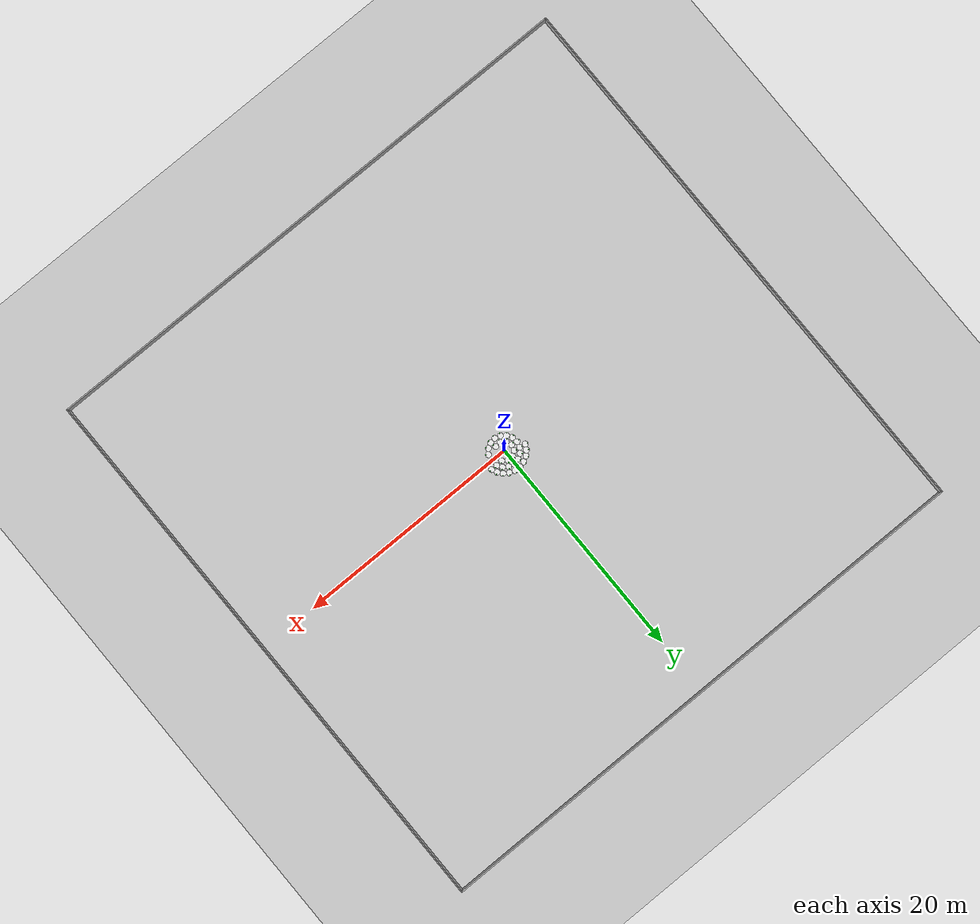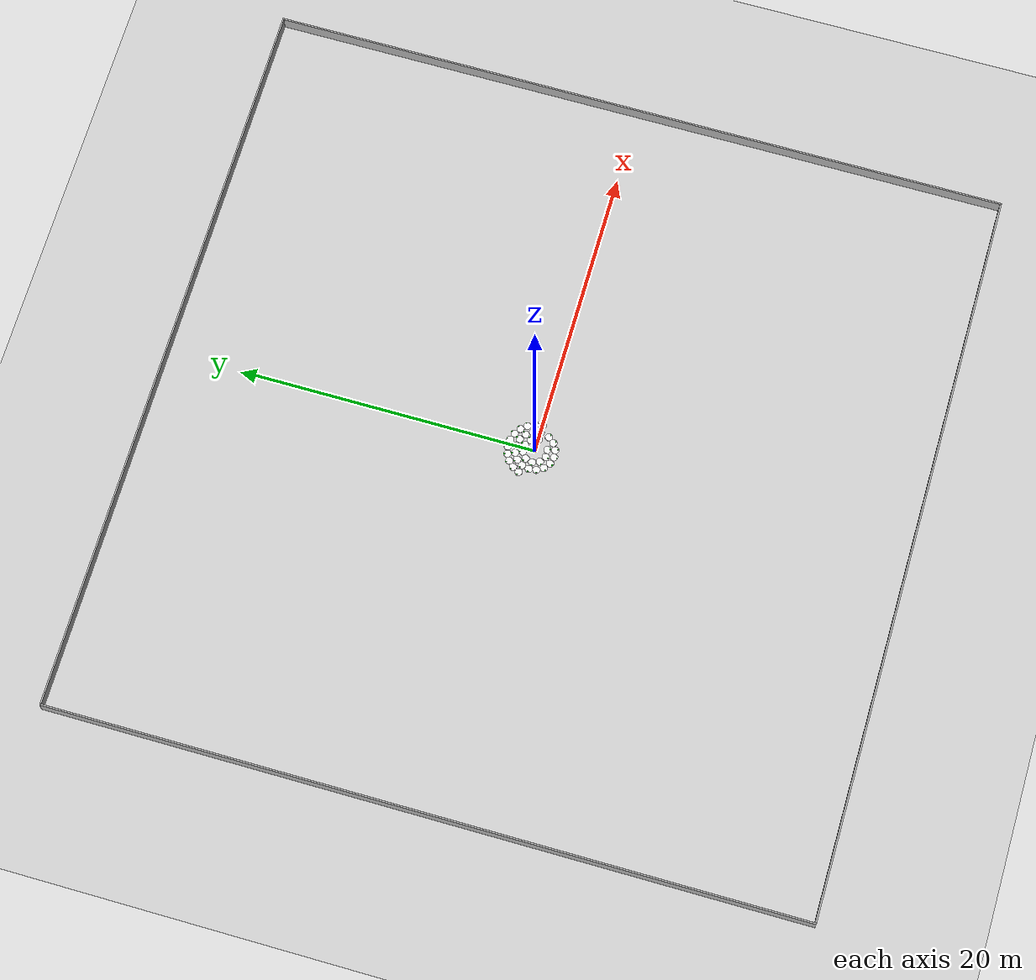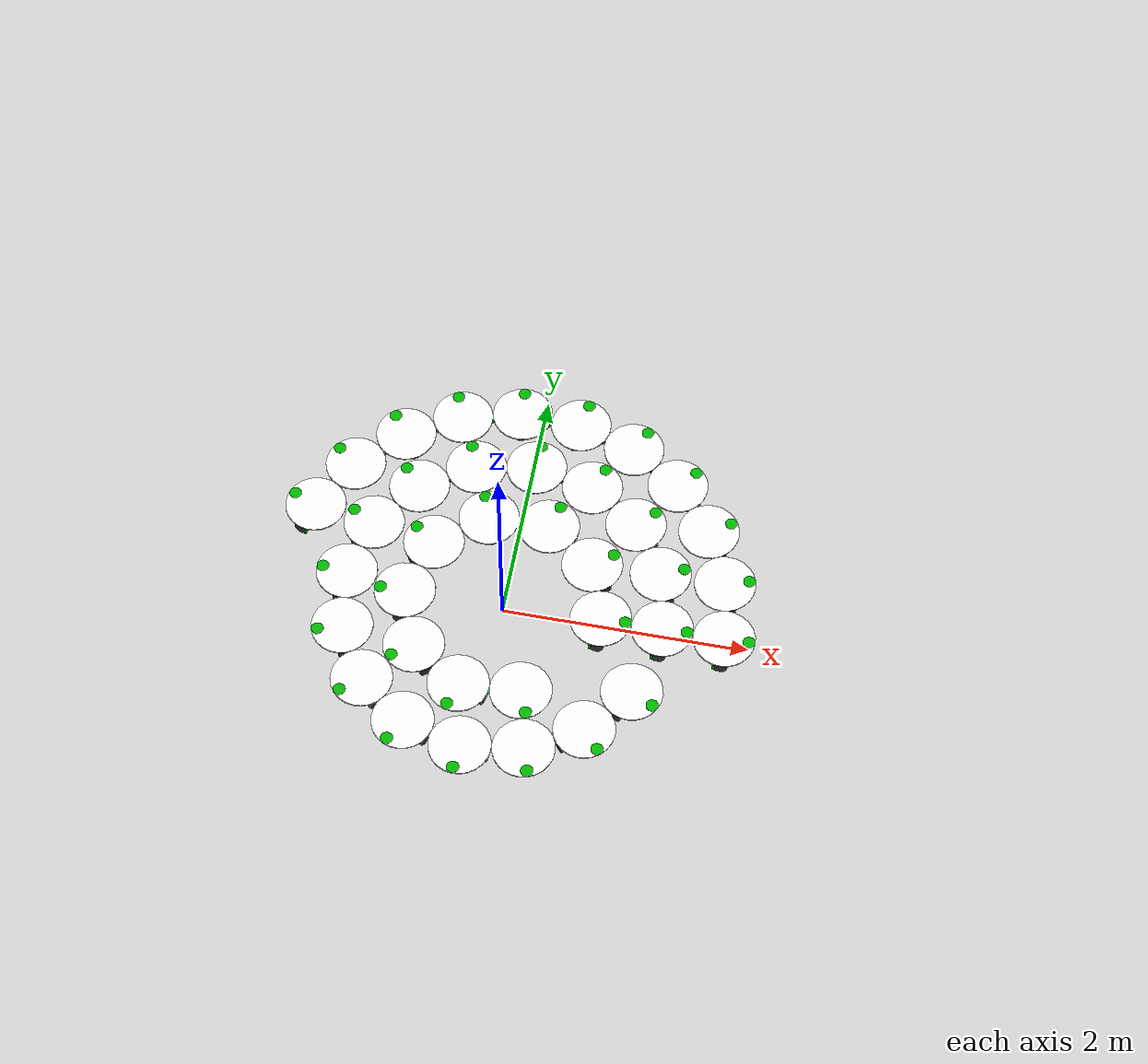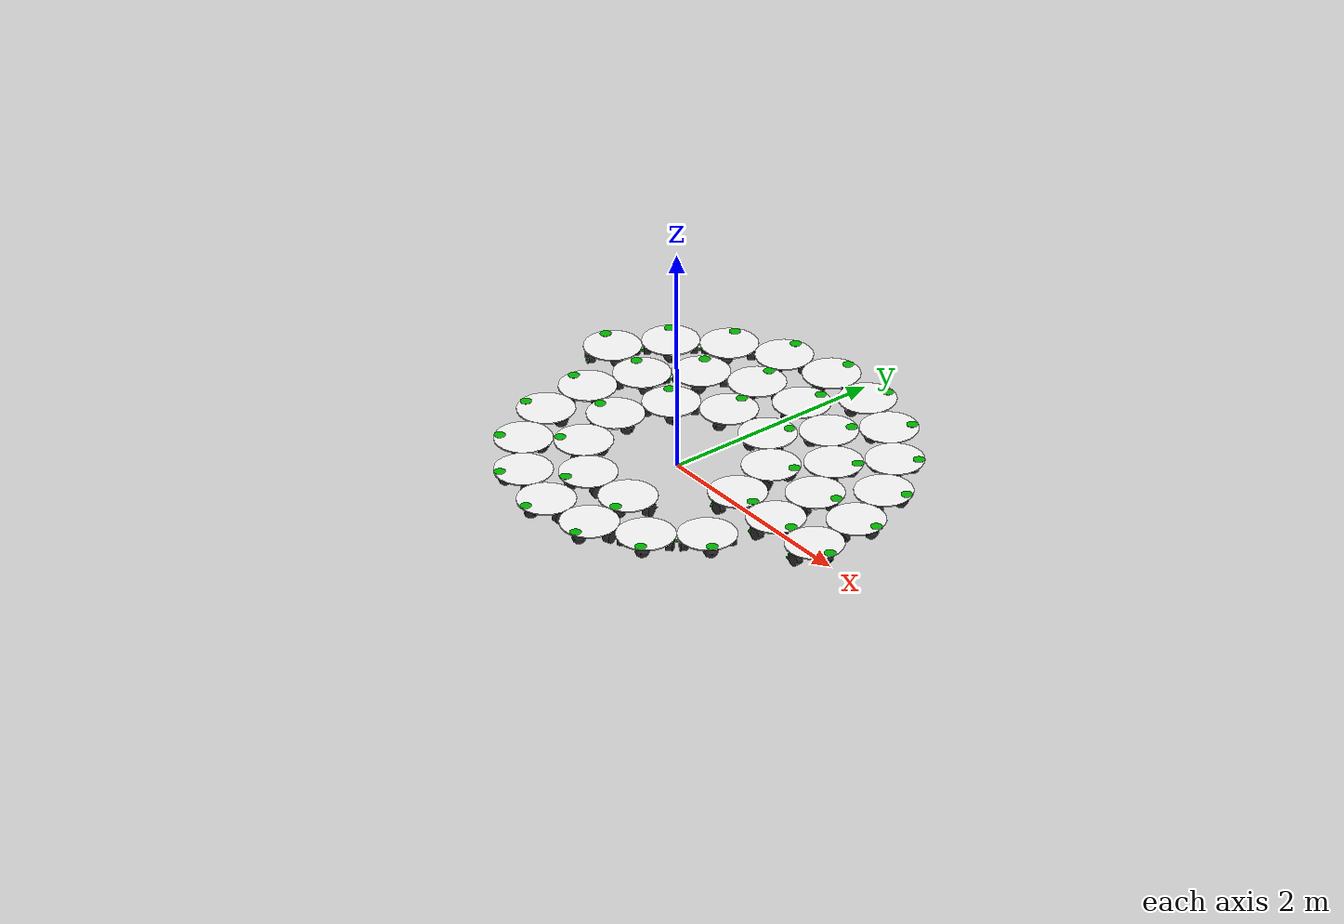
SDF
<sdf version="1.6">
 <world name="default">
  <include><uri>model://ground_plane</uri></include>
  <include><uri>model://sun</uri></include>
  <include><name>m_4wrobot1</name><pose>0.8 0.0 0.005 0 0 0</pose><uri>model://m_4wrobot</uri></include>
  <include>
   <name>m_4wrobot2</name>
   <pose>0.64375 0.4749588797990832 0.005 0 0 0.6356474078557615</pose>
   <uri>model://m_4wrobot</uri>
  </include>
  <include>
   <name>m_4wrobot3</name>
   <pose>0.2360351562500001 0.7643869471766496 0.005 0 0 1.271294815711523</pose>
   <uri>model://m_4wrobot</uri>
  </include>
  <include>
   <name>m_4wrobot4</name>
   <pose>-0.26388092041015615 0.7552263633133373 0.005 0 0 1.9069422235672844</pose>
   <uri>model://m_4wrobot</uri>
  </include>
  <include>
   <name>m_4wrobot5</name>
   <pose>-0.6607185125350952 0.4510554812807526 0.005 0 0 2.542589631423046</pose>
   <uri>model://m_4wrobot</uri>
  </include>
  <include>
   <name>m_4wrobot6</name>
   <pose>-0.7994629357010127 -0.029308948127125846 0.005 0 0 3.178237039278807</pose>
   <uri>model://m_4wrobot</uri>
  </include>
  <include>
   <name>m_4wrobot7</name>
   <pose>-0.6259171496087224 -0.4982245696728458 0.005 0 0 3.8138844471345683</pose>
   <uri>model://m_4wrobot</uri>
  </include>
  <include>
   <name>m_4wrobot8</name>
   <pose>-0.20787247695052505 -0.7725212186901105 0.005 0 0 4.4495318549903295</pose>
   <uri>model://m_4wrobot</uri>
  </include>
  <include>
   <name>m_4wrobot9</name>
   <pose>0.29137238201647103 -0.745051766656551 0.005 0 0 5.085179262846091</pose>
   <uri>model://m_4wrobot</uri>
  </include>
  <include><name>m_4wrobot10</name><pose>1.3 0.0 0.005 0 0 0</pose><uri>model://m_4wrobot</uri></include>
  <include>
   <name>m_4wrobot11</name>
   <pose>1.203846153846154 0.49066733931434897 0.005 0 0 0.38702638502157094</pose>
   <uri>model://m_4wrobot</uri>
  </include>
  <include>
   <name>m_4wrobot12</name>
   <pose>0.9296085571233501 0.9087507526946227 0.005 0 0 0.7740527700431419</pose>
   <uri>model://m_4wrobot</uri>
  </include>
  <include>
   <name>m_4wrobot13</name>
   <pose>0.5178549016544888 1.1924035813567568 0.005 0 0 1.1610791550647128</pose>
   <uri>model://m_4wrobot</uri>
  </include>
  <include>
   <name>m_4wrobot14</name>
   <pose>0.029495491503010597 1.29966534768801 0.005 0 0 1.5481055400862838</pose>
   <uri>model://m_4wrobot</uri>
  </include>
  <include>
   <name>m_4wrobot15</name>
   <pose>-0.4632271570364868 1.214668926491451 0.005 0 0 1.9351319251078547</pose>
   <uri>model://m_4wrobot</uri>
  </include>
  <include>
   <name>m_4wrobot16</name>
   <pose>-0.8874250782037229 0.9499877528553284 0.005 0 0 2.3221583101294256</pose>
   <uri>model://m_4wrobot</uri>
  </include>
  <include>
   <name>m_4wrobot17</name>
   <pose>-1.1803471002283965 0.5447758465482989 0.005 0 0 2.709184695150997</pose>
   <uri>model://m_4wrobot</uri>
  </include>
  <include>
   <name>m_4wrobot18</name>
   <pose>-1.2986615630476859 0.058975797260752326 0.005 0 0 3.0962110801725675</pose>
   <uri>model://m_4wrobot</uri>
  </include>
  <include>
   <name>m_4wrobot19</name>
   <pose>-1.2248663271912825 -0.43554848239081084 0.005 0 0 3.4832374651941382</pose>
   <uri>model://m_4wrobot</uri>
  </include>
  <include>
   <name>m_4wrobot20</name>
   <pose>-0.9698778476675296 -0.8656425131679938 0.005 0 0 3.870263850215709</pose>
   <uri>model://m_4wrobot</uri>
  </include>
  <include>
   <name>m_4wrobot21</name>
   <pose>-0.5714163137550893 -1.1676829177368937 0.005 0 0 4.25729023523728</pose>
   <uri>model://m_4wrobot</uri>
  </include>
  <include>
   <name>m_4wrobot22</name>
   <pose>-0.08842573934633403 -1.2969891628772594 0.005 0 0 4.64431662025885</pose>
   <uri>model://m_4wrobot</uri>
  </include>
  <include>
   <name>m_4wrobot23</name>
   <pose>0.40764556573495575 -1.2344331058168474 0.005 0 0 5.031343005280421</pose>
   <uri>model://m_4wrobot</uri>
  </include>
  <include>
   <name>m_4wrobot24</name>
   <pose>0.8434142723347433 -0.9892686011503931 0.005 0 0 5.418369390301992</pose>
   <uri>model://m_4wrobot</uri>
  </include>
  <include>
   <name>m_4wrobot25</name>
   <pose>1.154417554032942 -0.5977625874380227 0.005 0 0 5.8053957753235625</pose>
   <uri>model://m_4wrobot</uri>
  </include>
  <include><name>m_4wrobot26</name><pose>1.8 0.0 0.005 0 0 0</pose><uri>model://m_4wrobot</uri></include>
  <include>
   <name>m_4wrobot27</name>
   <pose>1.7305555555555554 0.4951539852771081 0.005 0 0 0.2786786815155391</pose>
   <uri>model://m_4wrobot</uri>
  </include>
  <include>
   <name>m_4wrobot28</name>
   <pose>1.5275805898491084 0.9521016445297478 0.005 0 0 0.5573573630310782</pose>
   <uri>model://m_4wrobot</uri>
  </include>
  <include>
   <name>m_4wrobot29</name>
   <pose>1.206736751469119 1.3355846707168206 0.005 0 0 0.8360360445466173</pose>
   <uri>model://m_4wrobot</uri>
  </include>
  <include>
   <name>m_4wrobot30</name>
   <pose>0.7927805094263886 1.616013324163398 0.005 0 0 1.1147147260621564</pose>
   <uri>model://m_4wrobot</uri>
  </include>
  <include>
   <name>m_4wrobot31</name>
   <pose>0.31765293177977033 1.7717495914862564 0.005 0 0 1.3933934075776955</pose>
   <uri>model://m_4wrobot</uri>
  </include>
  <include>
   <name>m_4wrobot32</name>
   <pose>-0.18198490294862033 1.7907767853919654 0.005 0 0 1.6720720890932346</pose>
   <uri>model://m_4wrobot</uri>
  </include>
  <include>
   <name>m_4wrobot33</name>
   <pose>-0.6675806926964075 1.6716267582026152 0.005 0 0 1.9507507706087737</pose>
   <uri>model://m_4wrobot</uri>
  </include>
  <include>
   <name>m_4wrobot34</name>
   <pose>-1.101665626526262 1.4234931848556558 0.005 0 0 2.2294294521243128</pose>
   <uri>model://m_4wrobot</uri>
  </include>
  <include>
   <name>m_4wrobot35</name>
   <pose>-1.4507454965809423 1.0655221744056365 0.005 0 0 2.508108133639852</pose>
   <uri>model://m_4wrobot</uri>
  </include>
  <include>
   <name>m_4wrobot36</name>
   <pose>-1.6878851277019076 0.6253349467946878 0.005 0 0 2.7867868151553914</pose>
   <uri>model://m_4wrobot</uri>
  </include>
  <model name="boundary1">
   <static>1</static>
   <link name="link">
    <collision name="collision1">
     <pose>-25.05 0 0.0 0 0 0</pose>
     <geometry><box><size>0.1 50.1 1.919</size></box></geometry>
    </collision>
    <visual name="visual1">
     <pose>-25.05 0 0.0 0 0 0</pose>
     <geometry><box><size>0.1 50.1 1.919</size></box></geometry>
    </visual>
    <collision name="collision2">
     <pose>25.05 0 0.0 0 0 0</pose>
     <geometry><box><size>0.1 50.1 1.919</size></box></geometry>
    </collision>
    <visual name="visual2">
     <pose>25.05 0 0.0 0 0 0</pose>
     <geometry><box><size>0.1 50.1 1.919</size></box></geometry>
    </visual>
    <collision name="collision3">
     <pose>0 -25.0 0.0 0 0 0</pose>
     <geometry><box><size>50.0 0.1 1.919</size></box></geometry>
    </collision>
    <visual name="visual3">
     <pose>0 -25.0 0.0 0 0 0</pose>
     <geometry><box><size>50.0 0.1 1.919</size></box></geometry>
    </visual>
    <collision name="collision4">
     <pose>0 25.0 0.0 0 0 0</pose>
     <geometry><box><size>50.0 0.1 1.919</size></box></geometry>
    </collision>
    <visual name="visual4">
     <pose>0 25.0 0.0 0 0 0</pose>
     <geometry><box><size>50.0 0.1 1.919</size></box></geometry>
    </visual>
   </link>
  </model>
  <plugin name="wp_swarm1" filename="libwp_swarm1.so"/>
 </world>
</sdf>

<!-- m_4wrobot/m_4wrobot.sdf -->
<!--Prefer Using this version.-->

<!--scale -->
<!--chassis length -->
<!--chassis radius -->
<!--wheel radius -->
<!--wheel length -->
<!--friction coefficient on wheels range from 0 to 1 -->
<!--slip coefficient range from 0 to 1 -->
<!--chassis mass-->
<!--mass of revolute wheels-->
<!--mass of caster wheels-->

<?xml version='1.0'?>
<sdf version='1.6'>
  <model name='m_4wrobot'>
	  <static>true</static>
	  <pose>0 0 0 0 0 0</pose>
	  <link name = 'chassis'>
		  <pose>0 0 0.126 0 0 0</pose>
		  <inertial>
			<mass>1</mass>
			<inertia>
				<ixx>0.015633333333333332</ixx>
				<ixy>0</ixy>
				<ixz>0</ixz>
				<iyy>0.015633333333333332</iyy>
				<iyz>0</iyz>
				<izz>0.015633333333333332</izz>
			</inertia>
		 </inertial>
		  <visual name='visual'>
			  <geometry>
				  <cylinder>
					  <radius>0.25</radius>
					  <length>0.01</length>
				  </cylinder>
			  </geometry>
			  <material>
				<ambient>0.95 0.95 0.95 01</ambient>
				<diffuse>0.95 0.95 0.95 01</diffuse>
				<specular>0 0 0 0</specular>
				<emissive>0 0 0 0</emissive>
			  </material>
		  </visual>
		  <visual name = 'visual1'>
			  <pose>0.2 0 0 0 0 0</pose>
			  <geometry>
				  <cylinder>
					  <radius>0.05</radius>
					  <length>0.0121</length>
				  </cylinder>
			  </geometry>
			  <material>
				<ambient>0 0.7 0 01</ambient>
				<diffuse>0 0.7 0 01</diffuse>
				<specular>0 0 0 0</specular>
				<emissive>0 0 0 0</emissive>
			  </material>
		  </visual>
		  <collision name='collision'>
			  <geometry>
				  <cylinder>
					  <radius>0.25</radius>
					  <length>0.0605</length><!--2*wr-->
				  </cylinder>
			  </geometry>
		  </collision>
		  <sensor name='chassis_contact' type='contact'>
			  <contact>
				  <collision>collision</collision>
			  </contact>
			  <update_rate>1</update_rate>
			  <always_on>true</always_on>
			  <visualize>false</visualize>
		  </sensor>
	  </link>
	  <link name = 'wheelL'>
		  <pose>0 0.2 0.0605 0 1.5705 1.5705</pose>
	    <inertial>
			<mass>1</mass>
			<inertia>
				<ixx>0.0012200833333333332</ixx>
				<ixy>0</ixy>
				<ixz>0</ixz>
				<iyy>0.0012200833333333332</iyy>
				<iyz>0</iyz>
				<izz>0.0012200833333333332</izz>
			</inertia>
		 </inertial>
		  <visual name = 'visual'>
			  <geometry>
				  <cylinder>
					  <radius>0.0605</radius>
					  <length>0.0605</length>
				  </cylinder>
			  </geometry>
			  <material>
				<ambient>0.2 0.2 0.2 01</ambient>
				<diffuse>0.2 0.2 0.2 01</diffuse>
				<specular>0 0 0 0</specular>
				<emissive>0 0 0 0</emissive>
			  </material>
		  </visual>
		  <visual name = 'visual1'>
			  <pose>0 0.05 0.03025 0 0 0</pose>
			  <geometry>
				  <cylinder>
					  <radius>0.010083333333333333</radius>
					  <length>0.03025</length>
				  </cylinder>
			  </geometry>
			  <material>
				<ambient>0 0.7 0 01</ambient>
				<diffuse>0 0.7 0 01</diffuse>
				<specular>0 0 0 0</specular>
				<emissive>0 0 0 0</emissive>
			  </material>
		  </visual>

		  <collision name = 'collision'>
			  <geometry>
				  <cylinder>
					  <radius>0.0605</radius>
					  <length>0.0605</length>
				  </cylinder>
			  </geometry>
		  </collision>
      </link>

      <joint type='revolute' name='L_joint'>
		  <pose>0 0 -0.03025 0 0 0</pose>
		  <child>wheelL</child>
		  <parent>chassis</parent>
		  <axis>
			  <xyz>0 0 1</xyz>
		  </axis>
		  <physics>
			  <ode>
				  <max_force>0</max_force>
			  </ode>
		  </physics>
      </joint>
      <link name = 'wheelR'>
		  <pose>0 -0.2 0.0605 0 1.5705 1.5705</pose>
		  <inertial>
		    <mass>1</mass>
			<inertia>
				<ixx>0.0012200833333333332</ixx>
				<ixy>0</ixy>
				<ixz>0</ixz>
				<iyy>0.0012200833333333332</iyy>
				<iyz>0</iyz>
				<izz>0.0012200833333333332</izz>
			</inertia>
		 </inertial>
		  <visual name = 'visual'>
			  <geometry>
				  <cylinder>
					  <radius>0.0605</radius>
					  <length>0.0605</length>
				  </cylinder>
			  </geometry>
			  <material>
				<ambient>0.2 0.2 0.2 01</ambient>
				<diffuse>0.2 0.2 0.2 01</diffuse>
				<specular>0 0 0 0</specular>
				<emissive>0 0 0 0</emissive>
			  </material>
		  </visual>
		  <visual name = 'visual1'>
			  <pose>0 0.05 -0.03025 0 0 0</pose>
			  <geometry>
				  <cylinder>
					  <radius>0.010083333333333333</radius>
					  <length>0.03025</length>
				  </cylinder>
			  </geometry>
			  <material>
				<ambient>0 0.7 0 01</ambient>
				<diffuse>0 0.7 0 01</diffuse>
				<specular>0 0 0 0</specular>
				<emissive>0 0 0 0</emissive>
			  </material>
		  </visual>
		  <collision name = 'collision'>
			  <geometry>
				  <cylinder>
					  <radius>0.0605</radius>
					  <length>0.0605</length>
				  </cylinder>
			  </geometry>
		  </collision>
      </link>
      <joint type='revolute' name='R_joint'>
		  <pose>0 0 0.03025 0 0 0</pose>
		  <child>wheelR</child>
		  <parent>chassis</parent>
		  <axis>
			  <xyz>0 0 1</xyz>
		  </axis>
		  <physics>
			  <ode>
				  <max_force>0</max_force>
			  </ode>
		  </physics>
      </joint>
      <link name = 'wheelB'>
		  <pose>-0.15 0 0.0605 0 1.5705 1.5705</pose>
		  <inertial>
			<mass>0.1</mass>
			<inertia>
				<ixx>0.00014641000000000003</ixx>
				<ixy>0</ixy>
				<ixz>0</ixz>
				<iyy>0.00014641000000000003</iyy>
				<iyz>0</iyz>
				<izz>0.00014641000000000003</izz>
			</inertia>
		 </inertial>
		 <visual name = 'visual1'>
			  <pose>0.0605 0 0 0 0 0</pose>
			  <geometry>
				  <sphere>
					  <radius>0.00605</radius>
				  </sphere>
			  </geometry>
			  <material>
				<ambient>0 0 0.7 01</ambient>
				<diffuse>0 0 0.7 01</diffuse>
				<specular>0 0 0 0</specular>
				<emissive>0 0 0 0</emissive>
			  </material>
		  </visual>
		  <visual name = 'visual2'>
			  <pose>0 0.0605 0 0 0 0</pose>
			  <geometry>
				  <sphere>
					  <radius>0.00605</radius>
				  </sphere>
			  </geometry>
			  <material>
				<ambient>0 0 0.7 01</ambient>
				<diffuse>0 0 0.7 01</diffuse>
				<specular>0 0 0 0</specular>
				<emissive>0 0 0 0</emissive>
			  </material>
		  </visual>
		  <visual name = 'visual3'>
			  <pose>0 0 0.0605 0 0 0</pose>
			  <geometry>
				  <sphere>
					  <radius>0.00605</radius>
				  </sphere>
			  </geometry>
			  <material>
				<ambient>0 0 0.7 01</ambient>
				<diffuse>0 0 0.7 01</diffuse>
				<specular>0 0 0 0</specular>
				<emissive>0 0 0 0</emissive>
			  </material>
		  </visual>
		  <visual name = 'visual4'>
			  <pose>-0.0605 0 0 0 0 0</pose>
			  <geometry>
				  <sphere>
					  <radius>-0.00605</radius>
				  </sphere>
			  </geometry>
			  <material>
				<ambient>0 0 0.7 01</ambient>
				<diffuse>0 0 0.7 01</diffuse>
				<specular>0 0 0 0</specular>
				<emissive>0 0 0 0</emissive>
			  </material>
		  </visual>
		  <visual name = 'visual5'>
			  <pose>0 -0.0605 0 0 0 0</pose>
			  <geometry>
				  <sphere>
					  <radius>0.00605</radius>
				  </sphere>
			  </geometry>
			  <material>
				<ambient>0 0 0.7 01</ambient>
				<diffuse>0 0 0.7 01</diffuse>
				<specular>0 0 0 0</specular>
				<emissive>0 0 0 0</emissive>
			  </material>
		  </visual>
		  <visual name = 'visual6'>
			  <pose>0 0 -0.0605 0 0 0</pose>
			  <geometry>
				  <sphere>
					  <radius>0.00605</radius>
				  </sphere>
			  </geometry>
			  <material>
				<ambient>0 0 0.7 01</ambient>
				<diffuse>0 0 0.7 01</diffuse>
				<specular>0 0 0 0</specular>
				<emissive>0 0 0 0</emissive>
			  </material>
		  </visual>
		  <visual name = 'visual'>
			  <geometry>
				  <sphere>
					  <radius>0.0605</radius>
				  </sphere>
			  </geometry>
			  <material>
				<ambient>0.2 0.2 0.2 01</ambient>
				<diffuse>0.2 0.2 0.2 01</diffuse>
				<specular>0 0 0 0</specular>
				<emissive>0 0 0 0</emissive>
			  </material>
		  </visual>
		  <collision name = 'collision'>
			  <geometry>
				  <sphere>
					  <radius>0.0605</radius>
				  </sphere>
			  </geometry>
		  </collision>
      </link>
      <joint type='ball' name='B_joint'>
		  <child>wheelB</child>
		  <parent>chassis</parent>
      </joint>

      <link name = 'wheelF'>
		  <pose>0.15 0 0.0605 0 1.5705 1.5705</pose>
		  <inertial>
			<mass>0.1</mass>
			<inertia>
				<ixx>0.00014641000000000003</ixx>
				<ixy>0</ixy>
				<ixz>0</ixz>
				<iyy>0.00014641000000000003</iyy>
				<iyz>0</iyz>
				<izz>0.00014641000000000003</izz>
			</inertia>
		 </inertial>
		 <visual name = 'visual1'>
			  <pose>0.0605 0 0 0 0 0</pose>
			  <geometry>
				  <sphere>
					  <radius>0.00605</radius>
				  </sphere>
			  </geometry>
			  <material>
				<ambient>0 0 0.7 01</ambient>
				<diffuse>0 0 0.7 01</diffuse>
				<specular>0 0 0 0</specular>
				<emissive>0 0 0 0</emissive>
			  </material>
		  </visual>
		  <visual name = 'visual2'>
			  <pose>0 0.0605 0 0 0 0</pose>
			  <geometry>
				  <sphere>
					  <radius>0.00605</radius>
				  </sphere>
			  </geometry>
			  <material>
				<ambient>0 0 0.7 01</ambient>
				<diffuse>0 0 0.7 01</diffuse>
				<specular>0 0 0 0</specular>
				<emissive>0 0 0 0</emissive>
			  </material>
		  </visual>
		  <visual name = 'visual3'>
			  <pose>0 0 0.0605 0 0 0</pose>
			  <geometry>
				  <sphere>
					  <radius>0.00605</radius>
				  </sphere>
			  </geometry>
			  <material>
				<ambient>0 0 0.7 01</ambient>
				<diffuse>0 0 0.7 01</diffuse>
				<specular>0 0 0 0</specular>
				<emissive>0 0 0 0</emissive>
			  </material>
		  </visual>
		  <visual name = 'visual4'>
			  <pose>-0.0605 0 0 0 0 0</pose>
			  <geometry>
				  <sphere>
					  <radius>-0.00605</radius>
				  </sphere>
			  </geometry>
			  <material>
				<ambient>0 0 0.7 01</ambient>
				<diffuse>0 0 0.7 01</diffuse>
				<specular>0 0 0 0</specular>
				<emissive>0 0 0 0</emissive>
			  </material>
		  </visual>
		  <visual name = 'visual5'>
			  <pose>0 -0.0605 0 0 0 0</pose>
			  <geometry>
				  <sphere>
					  <radius>0.00605</radius>
				  </sphere>
			  </geometry>
			  <material>
				<ambient>0 0 0.7 01</ambient>
				<diffuse>0 0 0.7 01</diffuse>
				<specular>0 0 0 0</specular>
				<emissive>0 0 0 0</emissive>
			  </material>
		  </visual>
		  <visual name = 'visual6'>
			  <pose>0 0 -0.0605 0 0 0</pose>
			  <geometry>
				  <sphere>
					  <radius>0.00605</radius>
				  </sphere>
			  </geometry>
			  <material>
				<ambient>0 0 0.7 01</ambient>
				<diffuse>0 0 0.7 01</diffuse>
				<specular>0 0 0 0</specular>
				<emissive>0 0 0 0</emissive>
			  </material>
		  </visual>
		  <visual name = 'visual'>
			  <geometry>
				  <sphere>
					  <radius>0.0605</radius>
				  </sphere>
			  </geometry>
			  <material>
				<ambient>0.2 0.2 0.2 01</ambient>
				<diffuse>0.2 0.2 0.2 01</diffuse>
				<specular>0 0 0 0</specular>
				<emissive>0 0 0 0</emissive>
			  </material>
		  </visual>
		  <collision name = 'collision'>
			  <geometry>
				  <sphere>
					  <radius>0.0605</radius>
				  </sphere>
			  </geometry>
		  </collision>
      </link>

      <joint type='ball' name='F_joint'>
		  <child>wheelF</child>
		  <parent>chassis</parent>
      </joint>

	 <plugin name='libmp_swarm1' filename='libmp_swarm1.so'/>
  </model>
 </sdf>
